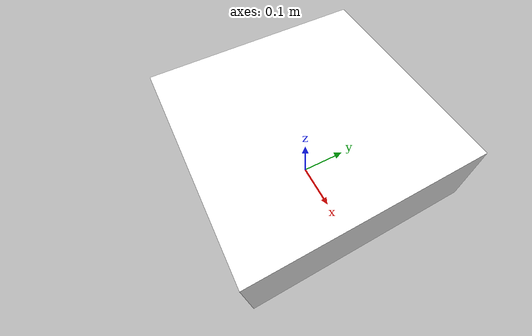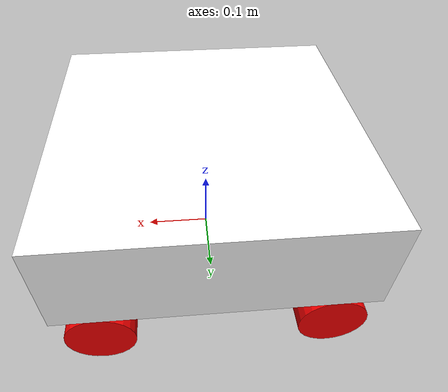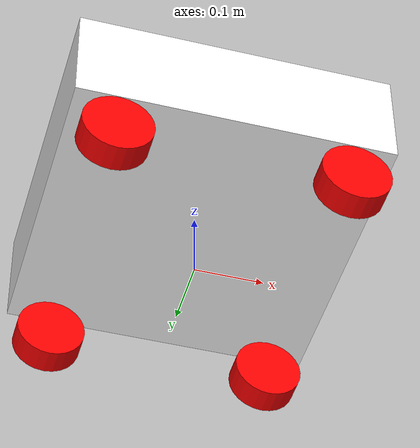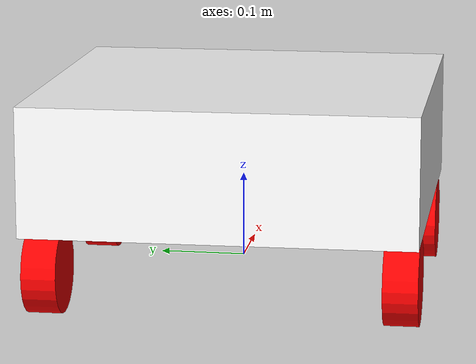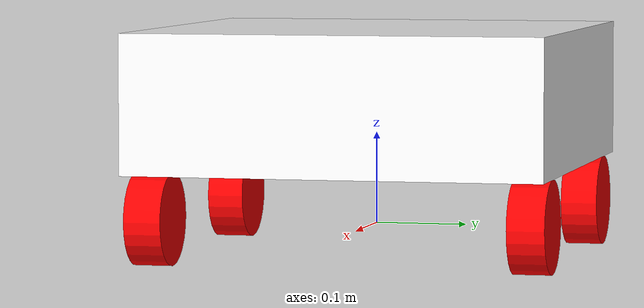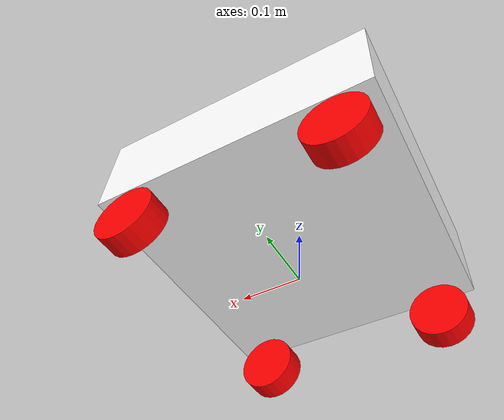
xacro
<?xml version="1.0"?>
<robot xmlns:xacro="http://www.ros.org/wiki/xacro" >

    <material name="white">
        <color rgba="1 1 1 1" />
    </material>

    <material name="orange">
        <color rgba="1 0.3 0.1 1"/>
    </material>

    <material name="blue">
        <color rgba="0.2 0.2 1 1"/>
    </material>

    <material name="black">
        <color rgba="0 0 0 1"/>
    </material>

    <material name="red">
        <color rgba="1 0 0 1"/>
    </material>

    <material name="green">
        <color rgba="0 1 0 1" />
    </material>

    <material name="gray">
        <color rgba="0.5 0.5 0.5 1" />
    </material>

    <material name="pink">
        <color rgba="1 0.4 0.7 1" />
    </material>

    <!-- BASE LINK -->

    <link name="base_link">
    </link>

    <!-- BASE_FOOTPRINT LINK -->
    <joint name="base_footprint_joint" type="fixed">
        <parent link="base_link"/>
        <child link="base_footprint"/>
        <origin xyz="0 0 0" rpy="0 0 0"/>
    </joint>

    <link name="base_footprint">
    </link>

    <joint name="chassis_joint" type="fixed">
        <parent link="base_link"/>
        <child link="chassis"/>
        <origin xyz="0 0 0"/>
    </joint>

    <!-- Chassis Link -->
    <link name="chassis">
        <visual>
            <origin xyz="0 0 0.14" rpy="0 0 0"/>
            <geometry>
                <box size="0.452 0.452 0.15"/>
                <!-- Hole geometry -->
                <cylinder length="0.15" radius="0.0725"/>
            </geometry>
            <material name="white"/>
        </visual>
        <collision>
            <origin xyz="0 0 0.14" rpy="0 0 0"/>
            <geometry>
                <box size="0.452 0.452 0.15"/>
                <!-- Hole geometry -->
                <cylinder length="0.15" radius="0.0725"/>
            </geometry>
        </collision>
        <xacro:inertial_box mass="200.0" x="0.452" y="0.452" z="0.15">
            <origin xyz="0 0 0.14" rpy="0 0 0"/>
        </xacro:inertial_box>
    </link>
    <gazebo reference="chassis">
        <material>Gazebo/White</material>
    </gazebo>

    <!-- frontleft -->

    <joint name="front_left_wheel_joint" type="continuous">
        <parent link="base_link"/>
        <child link="front_left_wheel"/>
        <origin xyz="0.165 0.205 0.015" rpy="-${pi/2} 0 0"/>
        <axis xyz="0 0 1"/>
    </joint>

    <link name="front_left_wheel">
        <visual>
            <geometry>
                <cylinder length="0.04" radius="0.05" />
            </geometry>
            <material name="red"/>
        </visual>
        <collision>
            <geometry>
                <cylinder length="0.04" radius="0.05" />
            </geometry>
        </collision>
        <xacro:inertial_cylinder mass="20" length="0.04" radius="0.05">
            <origin xyz="0 0 0" rpy="0 0 0"/>
        </xacro:inertial_cylinder>
    </link>
    <gazebo reference="front_left_wheel">
        <material>Gazebo/Red</material>
    </gazebo>

    <!-- frontright -->

    <joint name="front_right_wheel_joint" type="continuous">
        <parent link="base_link"/>
        <child link="front_right_wheel"/>
        <origin xyz="0.165 -0.205 0.015" rpy="${pi/2} 0 0"/>
        <axis xyz="0 0 -1"/>
    </joint>

    <link name="front_right_wheel">
        <visual>
            <geometry>
                <cylinder length="0.04" radius="0.05" />
            </geometry>
            <material name="red"/>
        </visual>
        <collision>
            <geometry>
                <cylinder length="0.04" radius="0.05" />
            </geometry>
        </collision>
        <xacro:inertial_cylinder mass="20" length="0.04" radius="0.05">
            <origin xyz="0 0 0" rpy="0 0 0"/>
        </xacro:inertial_cylinder>
    </link>
    <gazebo reference="front_right_wheel">
        <material>Gazebo/Red</material>
    </gazebo>

    <!-- backleft -->

    <joint name="back_left_wheel_joint" type="continuous">
        <parent link="base_link"/>
        <child link="back_left_wheel"/>
        <origin xyz="-0.165 0.205 0.015" rpy="-${pi/2} 0 0"/>
        <axis xyz="0 0 1"/>
    </joint>

    <link name="back_left_wheel">
        <visual>
            <geometry>
                <cylinder length="0.04" radius="0.05" />
            </geometry>
            <material name="red"/>
        </visual>
        <collision>
            <geometry>
                <cylinder length="0.04" radius="0.05" />
            </geometry>
        </collision>
        <xacro:inertial_cylinder mass="20" length="0.04" radius="0.05">
            <origin xyz="0 0 0" rpy="0 0 0"/>
        </xacro:inertial_cylinder>
    </link>
    <gazebo reference="back_left_wheel">
        <material>Gazebo/Red</material>
    </gazebo>

    <!-- backright -->

    <joint name="back_right_wheel_joint" type="continuous">
        <parent link="base_link"/>
        <child link="back_right_wheel"/>
        <origin xyz="-0.165 -0.205 0.015" rpy="${pi/2} 0 0"/>
        <axis xyz="0 0 -1"/>
    </joint>

    <link name="back_right_wheel">
        <visual>
            <geometry>
                <cylinder length="0.04" radius="0.05" />
            </geometry>
            <material name="red"/>
        </visual>
        <collision>
            <geometry>
                <cylinder length="0.04" radius="0.05" />
            </geometry>
        </collision>
        <xacro:inertial_cylinder mass="20" length="0.04" radius="0.05">
            <origin xyz="0 0 0" rpy="0 0 0"/>
        </xacro:inertial_cylinder>
    </link>
    <gazebo reference="back_right_wheel">
        <material>Gazebo/Red</material>
    </gazebo>

</robot>
